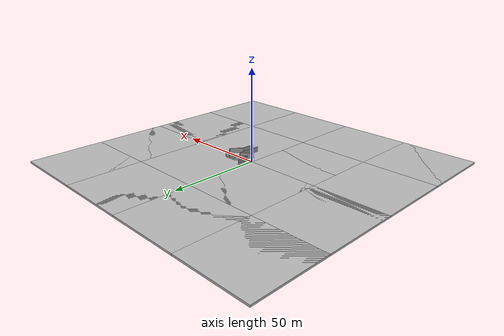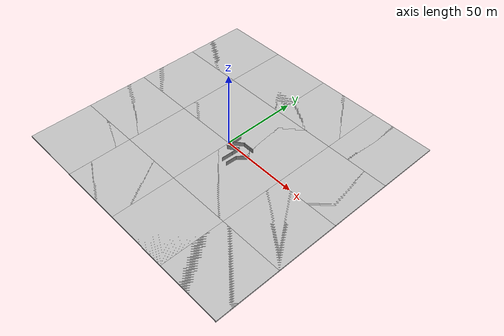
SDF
<sdf version="1.7">
 <world name="default">
  <model name="ground_plane">
   <static>1</static>
   <link name="link">
    <collision name="collision">
     <geometry><plane><normal>0 0 1</normal><size>5000 5000</size></plane></geometry>
     <surface><friction><ode><mu>1</mu><mu2>1</mu2></ode></friction></surface>
    </collision>
   </link>
  </model>
  <model name="map_satellite_29.72055_-95.40016_150_150_1">
   <static>1</static>
   <link name="link">
    <collision name="collision">
     <pose>0 0 -0.5 0 -0 0</pose>
     <geometry><box><size>165.955 165.955 1</size></box></geometry>
    </collision>
    <visual name="visual0_0">
     <pose>-62.2331 62.2331 -0.5 0 -0 1.5708</pose>
     <geometry><box><size>41.4888 41.4888 1</size></box></geometry>
     <material>
      <script>
       <uri>model://map_satellite_29.72055_-95.40016_150_150/materials/scripts</uri>
       <uri>model://map_satellite_29.72055_-95.40016_150_150/materials/textures</uri>
       <name>map_satellite_29.72055_-95.40016_150_150/0_0</name>
      </script>
     </material>
    </visual>
    <visual name="visual0_1">
     <pose>-20.7444 62.2331 -0.5 0 -0 1.5708</pose>
     <geometry><box><size>41.4888 41.4888 1</size></box></geometry>
     <material>
      <script>
       <uri>model://map_satellite_29.72055_-95.40016_150_150/materials/scripts</uri>
       <uri>model://map_satellite_29.72055_-95.40016_150_150/materials/textures</uri>
       <name>map_satellite_29.72055_-95.40016_150_150/0_1</name>
      </script>
     </material>
    </visual>
    <visual name="visual0_2">
     <pose>20.7444 62.2331 -0.5 0 -0 1.5708</pose>
     <geometry><box><size>41.4888 41.4888 1</size></box></geometry>
     <material>
      <script>
       <uri>model://map_satellite_29.72055_-95.40016_150_150/materials/scripts</uri>
       <uri>model://map_satellite_29.72055_-95.40016_150_150/materials/textures</uri>
       <name>map_satellite_29.72055_-95.40016_150_150/0_2</name>
      </script>
     </material>
    </visual>
    <visual name="visual0_3">
     <pose>62.2331 62.2331 -0.5 0 -0 1.5708</pose>
     <geometry><box><size>41.4888 41.4888 1</size></box></geometry>
     <material>
      <script>
       <uri>model://map_satellite_29.72055_-95.40016_150_150/materials/scripts</uri>
       <uri>model://map_satellite_29.72055_-95.40016_150_150/materials/textures</uri>
       <name>map_satellite_29.72055_-95.40016_150_150/0_3</name>
      </script>
     </material>
    </visual>
    <visual name="visual1_0">
     <pose>-62.2331 20.7444 -0.5 0 -0 1.5708</pose>
     <geometry><box><size>41.4888 41.4888 1</size></box></geometry>
     <material>
      <script>
       <uri>model://map_satellite_29.72055_-95.40016_150_150/materials/scripts</uri>
       <uri>model://map_satellite_29.72055_-95.40016_150_150/materials/textures</uri>
       <name>map_satellite_29.72055_-95.40016_150_150/1_0</name>
      </script>
     </material>
    </visual>
    <visual name="visual1_1">
     <pose>-20.7444 20.7444 -0.5 0 -0 1.5708</pose>
     <geometry><box><size>41.4888 41.4888 1</size></box></geometry>
     <material>
      <script>
       <uri>model://map_satellite_29.72055_-95.40016_150_150/materials/scripts</uri>
       <uri>model://map_satellite_29.72055_-95.40016_150_150/materials/textures</uri>
       <name>map_satellite_29.72055_-95.40016_150_150/1_1</name>
      </script>
     </material>
    </visual>
    <visual name="visual1_2">
     <pose>20.7444 20.7444 -0.5 0 -0 1.5708</pose>
     <geometry><box><size>41.4888 41.4888 1</size></box></geometry>
     <material>
      <script>
       <uri>model://map_satellite_29.72055_-95.40016_150_150/materials/scripts</uri>
       <uri>model://map_satellite_29.72055_-95.40016_150_150/materials/textures</uri>
       <name>map_satellite_29.72055_-95.40016_150_150/1_2</name>
      </script>
     </material>
    </visual>
    <visual name="visual1_3">
     <pose>62.2331 20.7444 -0.5 0 -0 1.5708</pose>
     <geometry><box><size>41.4888 41.4888 1</size></box></geometry>
     <material>
      <script>
       <uri>model://map_satellite_29.72055_-95.40016_150_150/materials/scripts</uri>
       <uri>model://map_satellite_29.72055_-95.40016_150_150/materials/textures</uri>
       <name>map_satellite_29.72055_-95.40016_150_150/1_3</name>
      </script>
     </material>
    </visual>
    <visual name="visual2_0">
     <pose>-62.2331 -20.7444 -0.5 0 -0 1.5708</pose>
     <geometry><box><size>41.4888 41.4888 1</size></box></geometry>
     <material>
      <script>
       <uri>model://map_satellite_29.72055_-95.40016_150_150/materials/scripts</uri>
       <uri>model://map_satellite_29.72055_-95.40016_150_150/materials/textures</uri>
       <name>map_satellite_29.72055_-95.40016_150_150/2_0</name>
      </script>
     </material>
    </visual>
    <visual name="visual2_1">
     <pose>-20.7444 -20.7444 -0.5 0 -0 1.5708</pose>
     <geometry><box><size>41.4888 41.4888 1</size></box></geometry>
     <material>
      <script>
       <uri>model://map_satellite_29.72055_-95.40016_150_150/materials/scripts</uri>
       <uri>model://map_satellite_29.72055_-95.40016_150_150/materials/textures</uri>
       <name>map_satellite_29.72055_-95.40016_150_150/2_1</name>
      </script>
     </material>
    </visual>
    <visual name="visual2_2">
     <pose>20.7444 -20.7444 -0.5 0 -0 1.5708</pose>
     <geometry><box><size>41.4888 41.4888 1</size></box></geometry>
     <material>
      <script>
       <uri>model://map_satellite_29.72055_-95.40016_150_150/materials/scripts</uri>
       <uri>model://map_satellite_29.72055_-95.40016_150_150/materials/textures</uri>
       <name>map_satellite_29.72055_-95.40016_150_150/2_2</name>
      </script>
     </material>
    </visual>
    <visual name="visual2_3">
     <pose>62.2331 -20.7444 -0.5 0 -0 1.5708</pose>
     <geometry><box><size>41.4888 41.4888 1</size></box></geometry>
     <material>
      <script>
       <uri>model://map_satellite_29.72055_-95.40016_150_150/materials/scripts</uri>
       <uri>model://map_satellite_29.72055_-95.40016_150_150/materials/textures</uri>
       <name>map_satellite_29.72055_-95.40016_150_150/2_3</name>
      </script>
     </material>
    </visual>
    <visual name="visual3_0">
     <pose>-62.2331 -62.2331 -0.5 0 -0 1.5708</pose>
     <geometry><box><size>41.4888 41.4888 1</size></box></geometry>
     <material>
      <script>
       <uri>model://map_satellite_29.72055_-95.40016_150_150/materials/scripts</uri>
       <uri>model://map_satellite_29.72055_-95.40016_150_150/materials/textures</uri>
       <name>map_satellite_29.72055_-95.40016_150_150/3_0</name>
      </script>
     </material>
    </visual>
    <visual name="visual3_1">
     <pose>-20.7444 -62.2331 -0.5 0 -0 1.5708</pose>
     <geometry><box><size>41.4888 41.4888 1</size></box></geometry>
     <material>
      <script>
       <uri>model://map_satellite_29.72055_-95.40016_150_150/materials/scripts</uri>
       <uri>model://map_satellite_29.72055_-95.40016_150_150/materials/textures</uri>
       <name>map_satellite_29.72055_-95.40016_150_150/3_1</name>
      </script>
     </material>
    </visual>
    <visual name="visual3_2">
     <pose>20.7444 -62.2331 -0.5 0 -0 1.5708</pose>
     <geometry><box><size>41.4888 41.4888 1</size></box></geometry>
     <material>
      <script>
       <uri>model://map_satellite_29.72055_-95.40016_150_150/materials/scripts</uri>
       <uri>model://map_satellite_29.72055_-95.40016_150_150/materials/textures</uri>
       <name>map_satellite_29.72055_-95.40016_150_150/3_2</name>
      </script>
     </material>
    </visual>
    <visual name="visual3_3">
     <pose>62.2331 -62.2331 -0.5 0 -0 1.5708</pose>
     <geometry><box><size>41.4888 41.4888 1</size></box></geometry>
     <material>
      <script>
       <uri>model://map_satellite_29.72055_-95.40016_150_150/materials/scripts</uri>
       <uri>model://map_satellite_29.72055_-95.40016_150_150/materials/textures</uri>
       <name>map_satellite_29.72055_-95.40016_150_150/3_3</name>
      </script>
     </material>
    </visual>
   </link>
   <pose>0.010599 -0.000588 0 0 -0 0</pose>
  </model>
  <model name="grey_wall_clone_0_clone">
   <static>1</static>
   <link name="link">
    <pose>0 0 1.4 0 -0 0</pose>
    <collision name="collision"><geometry><box><size>7.5 0.2 2.8</size></box></geometry></collision>
    <visual name="visual">
     <cast_shadows>0</cast_shadows>
     <geometry><box><size>7.5 0.2 2.8</size></box></geometry>
     <material>
      <script>
       <uri>model://grey_wall/materials/scripts</uri>
       <uri>model://grey_wall/materials/textures</uri>
       <name>vrc/grey_wall</name>
      </script>
     </material>
    </visual>
   </link>
   <pose>2.53807 4.28212 -0 0 0 -1.48635</pose>
  </model>
  <model name="grey_wall_clone_clone">
   <static>1</static>
   <link name="link">
    <pose>0 0 1.4 0 -0 0</pose>
    <collision name="collision"><geometry><box><size>7.5 0.2 2.8</size></box></geometry></collision>
    <visual name="visual">
     <cast_shadows>0</cast_shadows>
     <geometry><box><size>7.5 0.2 2.8</size></box></geometry>
     <material>
      <script>
       <uri>model://grey_wall/materials/scripts</uri>
       <uri>model://grey_wall/materials/textures</uri>
       <name>vrc/grey_wall</name>
      </script>
     </material>
    </visual>
   </link>
   <pose>5.72727 2.90406 -0 0 -0 0.696169</pose>
  </model>
  <model name="grey_wall_clone_clone_clone">
   <static>1</static>
   <link name="link">
    <pose>0 0 1.4 0 -0 0</pose>
    <collision name="collision"><geometry><box><size>7.5 0.2 2.8</size></box></geometry></collision>
    <visual name="visual">
     <cast_shadows>0</cast_shadows>
     <geometry><box><size>7.5 0.2 2.8</size></box></geometry>
     <material>
      <script>
       <uri>model://grey_wall/materials/scripts</uri>
       <uri>model://grey_wall/materials/textures</uri>
       <name>vrc/grey_wall</name>
      </script>
     </material>
    </visual>
   </link>
   <pose>11.7607 4.83766 0 0 0 -0.003727</pose>
  </model>
  <model name="grey_wall_clone_clone_clone_clone">
   <static>1</static>
   <link name="link">
    <pose>0 0 1.4 0 -0 0</pose>
    <collision name="collision"><geometry><box><size>7.5 0.2 2.8</size></box></geometry></collision>
    <visual name="visual">
     <cast_shadows>0</cast_shadows>
     <geometry><box><size>7.5 0.2 2.8</size></box></geometry>
     <material>
      <script>
       <uri>model://grey_wall/materials/scripts</uri>
       <uri>model://grey_wall/materials/textures</uri>
       <name>vrc/grey_wall</name>
      </script>
     </material>
    </visual>
   </link>
   <pose>15.0764 2.36677 0 0 -0 2.36392</pose>
  </model>
  <model name="grey_wall_clone_clone_clone_clone_clone">
   <static>1</static>
   <link name="link">
    <pose>0 0 1.4 0 -0 0</pose>
    <collision name="collision"><geometry><box><size>7.5 0.2 2.8</size></box></geometry></collision>
    <visual name="visual">
     <cast_shadows>0</cast_shadows>
     <geometry><box><size>7.5 0.2 2.8</size></box></geometry>
     <material>
      <script>
       <uri>model://grey_wall/materials/scripts</uri>
       <uri>model://grey_wall/materials/textures</uri>
       <name>vrc/grey_wall</name>
      </script>
     </material>
    </visual>
   </link>
   <pose>15.3219 -3.05071 -0 0 -0 0.867437</pose>
  </model>
  <model name="grey_wall_clone_clone_clone_0">
   <static>1</static>
   <link name="link">
    <pose>0 0 1.4 0 -0 0</pose>
    <collision name="collision"><geometry><box><size>7.5 0.2 2.8</size></box></geometry></collision>
    <visual name="visual">
     <cast_shadows>0</cast_shadows>
     <geometry><box><size>7.5 0.2 2.8</size></box></geometry>
     <material>
      <script>
       <uri>model://grey_wall/materials/scripts</uri>
       <uri>model://grey_wall/materials/textures</uri>
       <name>vrc/grey_wall</name>
      </script>
     </material>
    </visual>
   </link>
   <pose>5.94954 -1.85774 0 0 -0 0.575369</pose>
  </model>
  <model name="grey_wall_clone_clone_clone_1">
   <static>1</static>
   <link name="link">
    <pose>0 0 1.4 0 -0 0</pose>
    <collision name="collision"><geometry><box><size>7.5 0.2 2.8</size></box></geometry></collision>
    <visual name="visual">
     <cast_shadows>0</cast_shadows>
     <geometry><box><size>7.5 0.2 2.8</size></box></geometry>
     <material>
      <script>
       <uri>model://grey_wall/materials/scripts</uri>
       <uri>model://grey_wall/materials/textures</uri>
       <name>vrc/grey_wall</name>
      </script>
     </material>
    </visual>
   </link>
   <pose>8.90261 -3.52871 0 0 0 -1.61423</pose>
  </model>
  <model name="grey_wall_clone_clone_clone_1_clone">
   <static>1</static>
   <link name="link">
    <pose>0 0 1.4 0 -0 0</pose>
    <collision name="collision"><geometry><box><size>7.5 0.2 2.8</size></box></geometry></collision>
    <visual name="visual">
     <cast_shadows>0</cast_shadows>
     <geometry><box><size>7.5 0.2 2.8</size></box></geometry>
     <material>
      <script>
       <uri>model://grey_wall/materials/scripts</uri>
       <uri>model://grey_wall/materials/textures</uri>
       <name>vrc/grey_wall</name>
      </script>
     </material>
    </visual>
   </link>
   <pose>12.7907 -9.53009 0 0 0 -1.61423</pose>
  </model>
  <model name="grey_wall_clone_clone_clone_1_clone_clone">
   <static>1</static>
   <link name="link">
    <pose>0 0 1.4 0 -0 0</pose>
    <collision name="collision"><geometry><box><size>7.5 0.2 2.8</size></box></geometry></collision>
    <visual name="visual">
     <cast_shadows>0</cast_shadows>
     <geometry><box><size>7.5 0.2 2.8</size></box></geometry>
     <material>
      <script>
       <uri>model://grey_wall/materials/scripts</uri>
       <uri>model://grey_wall/materials/textures</uri>
       <name>vrc/grey_wall</name>
      </script>
     </material>
    </visual>
   </link>
   <pose>8.68308 -9.00256 0 0 0 -1.61423</pose>
  </model>
  <model name="map_satellite_29.72055_-95.40016_150_150_3">
   <static>1</static>
   <link name="link">
    <collision name="collision">
     <pose>0 0 -0.5 0 -0 0</pose>
     <geometry><box><size>165.955 165.955 1</size></box></geometry>
    </collision>
    <visual name="visual0_0">
     <pose>-62.2331 62.2331 -0.5 0 -0 1.5708</pose>
     <geometry><box><size>41.4888 41.4888 1</size></box></geometry>
     <material>
      <script>
       <uri>model://map_satellite_29.72055_-95.40016_150_150/materials/scripts</uri>
       <uri>model://map_satellite_29.72055_-95.40016_150_150/materials/textures</uri>
       <name>map_satellite_29.72055_-95.40016_150_150/0_0</name>
      </script>
     </material>
    </visual>
    <visual name="visual0_1">
     <pose>-20.7444 62.2331 -0.5 0 -0 1.5708</pose>
     <geometry><box><size>41.4888 41.4888 1</size></box></geometry>
     <material>
      <script>
       <uri>model://map_satellite_29.72055_-95.40016_150_150/materials/scripts</uri>
       <uri>model://map_satellite_29.72055_-95.40016_150_150/materials/textures</uri>
       <name>map_satellite_29.72055_-95.40016_150_150/0_1</name>
      </script>
     </material>
    </visual>
    <visual name="visual0_2">
     <pose>20.7444 62.2331 -0.5 0 -0 1.5708</pose>
     <geometry><box><size>41.4888 41.4888 1</size></box></geometry>
     <material>
      <script>
       <uri>model://map_satellite_29.72055_-95.40016_150_150/materials/scripts</uri>
       <uri>model://map_satellite_29.72055_-95.40016_150_150/materials/textures</uri>
       <name>map_satellite_29.72055_-95.40016_150_150/0_2</name>
      </script>
     </material>
    </visual>
    <visual name="visual0_3">
     <pose>62.2331 62.2331 -0.5 0 -0 1.5708</pose>
     <geometry><box><size>41.4888 41.4888 1</size></box></geometry>
     <material>
      <script>
       <uri>model://map_satellite_29.72055_-95.40016_150_150/materials/scripts</uri>
       <uri>model://map_satellite_29.72055_-95.40016_150_150/materials/textures</uri>
       <name>map_satellite_29.72055_-95.40016_150_150/0_3</name>
      </script>
     </material>
    </visual>
    <visual name="visual1_0">
     <pose>-62.2331 20.7444 -0.5 0 -0 1.5708</pose>
     <geometry><box><size>41.4888 41.4888 1</size></box></geometry>
     <material>
      <script>
       <uri>model://map_satellite_29.72055_-95.40016_150_150/materials/scripts</uri>
       <uri>model://map_satellite_29.72055_-95.40016_150_150/materials/textures</uri>
       <name>map_satellite_29.72055_-95.40016_150_150/1_0</name>
      </script>
     </material>
    </visual>
    <visual name="visual1_1">
     <pose>-20.7444 20.7444 -0.5 0 -0 1.5708</pose>
     <geometry><box><size>41.4888 41.4888 1</size></box></geometry>
     <material>
      <script>
       <uri>model://map_satellite_29.72055_-95.40016_150_150/materials/scripts</uri>
       <uri>model://map_satellite_29.72055_-95.40016_150_150/materials/textures</uri>
       <name>map_satellite_29.72055_-95.40016_150_150/1_1</name>
      </script>
     </material>
    </visual>
    <visual name="visual1_2">
     <pose>20.7444 20.7444 -0.5 0 -0 1.5708</pose>
     <geometry><box><size>41.4888 41.4888 1</size></box></geometry>
     <material>
      <script>
       <uri>model://map_satellite_29.72055_-95.40016_150_150/materials/scripts</uri>
       <uri>model://map_satellite_29.72055_-95.40016_150_150/materials/textures</uri>
       <name>map_satellite_29.72055_-95.40016_150_150/1_2</name>
      </script>
     </material>
    </visual>
    <visual name="visual1_3">
     <pose>62.2331 20.7444 -0.5 0 -0 1.5708</pose>
     <geometry><box><size>41.4888 41.4888 1</size></box></geometry>
     <material>
      <script>
       <uri>model://map_satellite_29.72055_-95.40016_150_150/materials/scripts</uri>
       <uri>model://map_satellite_29.72055_-95.40016_150_150/materials/textures</uri>
       <name>map_satellite_29.72055_-95.40016_150_150/1_3</name>
      </script>
     </material>
    </visual>
    <visual name="visual2_0">
     <pose>-62.2331 -20.7444 -0.5 0 -0 1.5708</pose>
     <geometry><box><size>41.4888 41.4888 1</size></box></geometry>
     <material>
      <script>
       <uri>model://map_satellite_29.72055_-95.40016_150_150/materials/scripts</uri>
       <uri>model://map_satellite_29.72055_-95.40016_150_150/materials/textures</uri>
       <name>map_satellite_29.72055_-95.40016_150_150/2_0</name>
      </script>
     </material>
    </visual>
    <visual name="visual2_1">
     <pose>-20.7444 -20.7444 -0.5 0 -0 1.5708</pose>
     <geometry><box><size>41.4888 41.4888 1</size></box></geometry>
     <material>
      <script>
       <uri>model://map_satellite_29.72055_-95.40016_150_150/materials/scripts</uri>
       <uri>model://map_satellite_29.72055_-95.40016_150_150/materials/textures</uri>
       <name>map_satellite_29.72055_-95.40016_150_150/2_1</name>
      </script>
     </material>
    </visual>
    <visual name="visual2_2">
     <pose>20.7444 -20.7444 -0.5 0 -0 1.5708</pose>
     <geometry><box><size>41.4888 41.4888 1</size></box></geometry>
     <material>
      <script>
       <uri>model://map_satellite_29.72055_-95.40016_150_150/materials/scripts</uri>
       <uri>model://map_satellite_29.72055_-95.40016_150_150/materials/textures</uri>
       <name>map_satellite_29.72055_-95.40016_150_150/2_2</name>
      </script>
     </material>
    </visual>
    <visual name="visual2_3">
     <pose>62.2331 -20.7444 -0.5 0 -0 1.5708</pose>
     <geometry><box><size>41.4888 41.4888 1</size></box></geometry>
     <material>
      <script>
       <uri>model://map_satellite_29.72055_-95.40016_150_150/materials/scripts</uri>
       <uri>model://map_satellite_29.72055_-95.40016_150_150/materials/textures</uri>
       <name>map_satellite_29.72055_-95.40016_150_150/2_3</name>
      </script>
     </material>
    </visual>
    <visual name="visual3_0">
     <pose>-62.2331 -62.2331 -0.5 0 -0 1.5708</pose>
     <geometry><box><size>41.4888 41.4888 1</size></box></geometry>
     <material>
      <script>
       <uri>model://map_satellite_29.72055_-95.40016_150_150/materials/scripts</uri>
       <uri>model://map_satellite_29.72055_-95.40016_150_150/materials/textures</uri>
       <name>map_satellite_29.72055_-95.40016_150_150/3_0</name>
      </script>
     </material>
    </visual>
    <visual name="visual3_1">
     <pose>-20.7444 -62.2331 -0.5 0 -0 1.5708</pose>
     <geometry><box><size>41.4888 41.4888 1</size></box></geometry>
     <material>
      <script>
       <uri>model://map_satellite_29.72055_-95.40016_150_150/materials/scripts</uri>
       <uri>model://map_satellite_29.72055_-95.40016_150_150/materials/textures</uri>
       <name>map_satellite_29.72055_-95.40016_150_150/3_1</name>
      </script>
     </material>
    </visual>
    <visual name="visual3_2">
     <pose>20.7444 -62.2331 -0.5 0 -0 1.5708</pose>
     <geometry><box><size>41.4888 41.4888 1</size></box></geometry>
     <material>
      <script>
       <uri>model://map_satellite_29.72055_-95.40016_150_150/materials/scripts</uri>
       <uri>model://map_satellite_29.72055_-95.40016_150_150/materials/textures</uri>
       <name>map_satellite_29.72055_-95.40016_150_150/3_2</name>
      </script>
     </material>
    </visual>
    <visual name="visual3_3">
     <pose>62.2331 -62.2331 -0.5 0 -0 1.5708</pose>
     <geometry><box><size>41.4888 41.4888 1</size></box></geometry>
     <material>
      <script>
       <uri>model://map_satellite_29.72055_-95.40016_150_150/materials/scripts</uri>
       <uri>model://map_satellite_29.72055_-95.40016_150_150/materials/textures</uri>
       <name>map_satellite_29.72055_-95.40016_150_150/3_3</name>
      </script>
     </material>
    </visual>
   </link>
  </model>
 </world>
</sdf>
